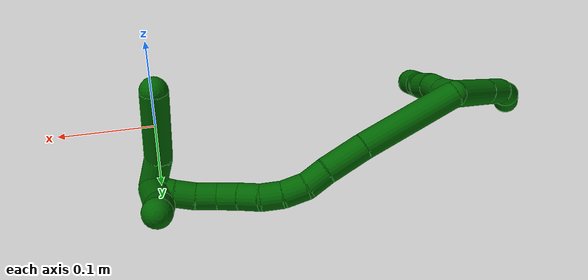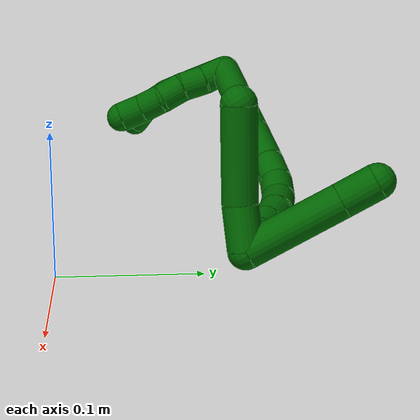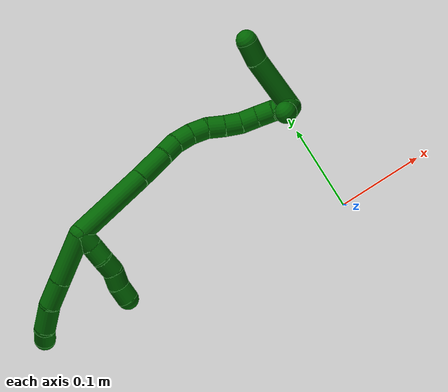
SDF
<sdf version="1.7">
 <world name="default">
  <model name="6">
   <static>0</static>
   <link name="6">
    <collision name="collision-cylinder-e_1_2_8">
     <pose>-0.025925 -0.000725 -0.017254 3.09957 -0.983168 -3.06313</pose>
     <geometry><cylinder><radius>0.0125</radius><length>0.062299</length></cylinder></geometry>
     <surface>
      <friction><ode><mu>1.16</mu><mu2>1.16</mu2><slip1>0</slip1><slip2>0</slip2></ode></friction>
      <contact><ode><kp>1e+06</kp><kd>1</kd><max_vel>0</max_vel><min_depth>0.001</min_depth></ode></contact>
     </surface>
    </collision>
    <visual name="visual-cylinder-e_1_2_8">
     <pose>-0.025925 -0.000725 -0.017254 3.09957 -0.983168 -3.06313</pose>
     <geometry><cylinder><radius>0.0125</radius><length>0.062299</length></cylinder></geometry>
     <material><ambient>0 0.392157 0.003922 1</ambient></material>
    </visual>
    <collision name="collision-cylinder-e_2_8_9">
     <pose>-0.065769 -0.001766 -0.043876 3.10798 -0.978122 -3.07844</pose>
     <geometry><cylinder><radius>0.0125</radius><length>0.033564</length></cylinder></geometry>
     <surface>
      <friction><ode><mu>1.16</mu><mu2>1.16</mu2><slip1>0</slip1><slip2>0</slip2></ode></friction>
      <contact><ode><kp>1e+06</kp><kd>1</kd><max_vel>0</max_vel><min_depth>0.001</min_depth></ode></contact>
     </surface>
    </collision>
    <visual name="visual-cylinder-e_2_8_9">
     <pose>-0.065769 -0.001766 -0.043876 3.10798 -0.978122 -3.07844</pose>
     <geometry><cylinder><radius>0.0125</radius><length>0.033564</length></cylinder></geometry>
     <material><ambient>0 0.392157 0.003922 1</ambient></material>
    </visual>
    <collision name="collision-cylinder-e_3_9_10">
     <pose>-0.091277 -0.000517 -0.065122 -3.01067 -0.76879 2.82026</pose>
     <geometry><cylinder><radius>0.0125</radius><length>0.033333</length></cylinder></geometry>
     <surface>
      <friction><ode><mu>1.16</mu><mu2>1.16</mu2><slip1>0</slip1><slip2>0</slip2></ode></friction>
      <contact><ode><kp>1e+06</kp><kd>1</kd><max_vel>0</max_vel><min_depth>0.001</min_depth></ode></contact>
     </surface>
    </collision>
    <visual name="visual-cylinder-e_3_9_10">
     <pose>-0.091277 -0.000517 -0.065122 -3.01067 -0.76879 2.82026</pose>
     <geometry><cylinder><radius>0.0125</radius><length>0.033333</length></cylinder></geometry>
     <material><ambient>0 0.392157 0.003922 1</ambient></material>
    </visual>
    <collision name="collision-cylinder-e_4_10_6">
     <pose>-0.108009 0.004677 -0.085278 -2.72831 -0.517425 1.80174</pose>
     <geometry><cylinder><radius>0.0125</radius><length>0.020803</length></cylinder></geometry>
     <surface>
      <friction><ode><mu>1.16</mu><mu2>1.16</mu2><slip1>0</slip1><slip2>0</slip2></ode></friction>
      <contact><ode><kp>1e+06</kp><kd>1</kd><max_vel>0</max_vel><min_depth>0.001</min_depth></ode></contact>
     </surface>
    </collision>
    <visual name="visual-cylinder-e_4_10_6">
     <pose>-0.108009 0.004677 -0.085278 -2.72831 -0.517425 1.80174</pose>
     <geometry><cylinder><radius>0.0125</radius><length>0.020803</length></cylinder></geometry>
     <material><ambient>0 0.392157 0.003922 1</ambient></material>
    </visual>
    <collision name="collision-cylinder-e_1_2_11">
     <pose>0.000939 -0.001327 -0.009867 3.0079 0.094032 1.22524</pose>
     <geometry><cylinder><radius>0.0125</radius><length>0.02</length></cylinder></geometry>
     <surface>
      <friction><ode><mu>1.16</mu><mu2>1.16</mu2><slip1>0</slip1><slip2>0</slip2></ode></friction>
      <contact><ode><kp>1e+06</kp><kd>1</kd><max_vel>0</max_vel><min_depth>0.001</min_depth></ode></contact>
     </surface>
    </collision>
    <visual name="visual-cylinder-e_1_2_11">
     <pose>0.000939 -0.001327 -0.009867 3.0079 0.094032 1.22524</pose>
     <geometry><cylinder><radius>0.0125</radius><length>0.02</length></cylinder></geometry>
     <material><ambient>0 0.392157 0.003922 1</ambient></material>
    </visual>
    <collision name="collision-cylinder-e_2_11_12">
     <pose>0.00223 -0.005217 -0.029394 2.88226 0.035207 0.268407</pose>
     <geometry><cylinder><radius>0.0125</radius><length>0.02</length></cylinder></geometry>
     <surface>
      <friction><ode><mu>1.16</mu><mu2>1.16</mu2><slip1>0</slip1><slip2>0</slip2></ode></friction>
      <contact><ode><kp>1e+06</kp><kd>1</kd><max_vel>0</max_vel><min_depth>0.001</min_depth></ode></contact>
     </surface>
    </collision>
    <visual name="visual-cylinder-e_2_11_12">
     <pose>0.00223 -0.005217 -0.029394 2.88226 0.035207 0.268407</pose>
     <geometry><cylinder><radius>0.0125</radius><length>0.02</length></cylinder></geometry>
     <material><ambient>0 0.392157 0.003922 1</ambient></material>
    </visual>
    <collision name="collision-cylinder-e_3_12_13">
     <pose>0.002826 -0.008254 -0.049039 3.09417 0.024434 0.951402</pose>
     <geometry><cylinder><radius>0.0125</radius><length>0.02</length></cylinder></geometry>
     <surface>
      <friction><ode><mu>1.16</mu><mu2>1.16</mu2><slip1>0</slip1><slip2>0</slip2></ode></friction>
      <contact><ode><kp>1e+06</kp><kd>1</kd><max_vel>0</max_vel><min_depth>0.001</min_depth></ode></contact>
     </surface>
    </collision>
    <visual name="visual-cylinder-e_3_12_13">
     <pose>0.002826 -0.008254 -0.049039 3.09417 0.024434 0.951402</pose>
     <geometry><cylinder><radius>0.0125</radius><length>0.02</length></cylinder></geometry>
     <material><ambient>0 0.392157 0.003922 1</ambient></material>
    </visual>
    <collision name="collision-cylinder-e_4_13_14">
     <pose>9.4e-05 -0.009483 -0.068542 3.06241 -0.302221 -2.63257</pose>
     <geometry><cylinder><radius>0.0125</radius><length>0.02</length></cylinder></geometry>
     <surface>
      <friction><ode><mu>1.16</mu><mu2>1.16</mu2><slip1>0</slip1><slip2>0</slip2></ode></friction>
      <contact><ode><kp>1e+06</kp><kd>1</kd><max_vel>0</max_vel><min_depth>0.001</min_depth></ode></contact>
     </surface>
    </collision>
    <visual name="visual-cylinder-e_4_13_14">
     <pose>9.4e-05 -0.009483 -0.068542 3.06241 -0.302221 -2.63257</pose>
     <geometry><cylinder><radius>0.0125</radius><length>0.02</length></cylinder></geometry>
     <material><ambient>0 0.392157 0.003922 1</ambient></material>
    </visual>
    <collision name="collision-cylinder-e_5_14_5">
     <pose>-0.003365 -0.011854 -0.087915 2.97912 -0.04833 -0.577157</pose>
     <geometry><cylinder><radius>0.0125</radius><length>0.02</length></cylinder></geometry>
     <surface>
      <friction><ode><mu>1.16</mu><mu2>1.16</mu2><slip1>0</slip1><slip2>0</slip2></ode></friction>
      <contact><ode><kp>1e+06</kp><kd>1</kd><max_vel>0</max_vel><min_depth>0.001</min_depth></ode></contact>
     </surface>
    </collision>
    <visual name="visual-cylinder-e_5_14_5">
     <pose>-0.003365 -0.011854 -0.087915 2.97912 -0.04833 -0.577157</pose>
     <geometry><cylinder><radius>0.0125</radius><length>0.02</length></cylinder></geometry>
     <material><ambient>0 0.392157 0.003922 1</ambient></material>
    </visual>
    <collision name="collision-cylinder-e_1_2_15">
     <pose>0.042133 0.022546 -0.005379 -1.80498 1.06785 -1.2855</pose>
     <geometry><cylinder><radius>0.0125</radius><length>0.096176</length></cylinder></geometry>
     <surface>
      <friction><ode><mu>1.16</mu><mu2>1.16</mu2><slip1>0</slip1><slip2>0</slip2></ode></friction>
      <contact><ode><kp>1e+06</kp><kd>1</kd><max_vel>0</max_vel><min_depth>0.001</min_depth></ode></contact>
     </surface>
    </collision>
    <visual name="visual-cylinder-e_1_2_15">
     <pose>0.042133 0.022546 -0.005379 -1.80498 1.06785 -1.2855</pose>
     <geometry><cylinder><radius>0.0125</radius><length>0.096176</length></cylinder></geometry>
     <material><ambient>0 0.392157 0.003922 1</ambient></material>
    </visual>
    <collision name="collision-cylinder-e_2_15_16">
     <pose>0.10116 0.055377 -0.013063 -1.79138 1.013 -1.21196</pose>
     <geometry><cylinder><radius>0.0125</radius><length>0.039824</length></cylinder></geometry>
     <surface>
      <friction><ode><mu>1.16</mu><mu2>1.16</mu2><slip1>0</slip1><slip2>0</slip2></ode></friction>
      <contact><ode><kp>1e+06</kp><kd>1</kd><max_vel>0</max_vel><min_depth>0.001</min_depth></ode></contact>
     </surface>
    </collision>
    <visual name="visual-cylinder-e_2_15_16">
     <pose>0.10116 0.055377 -0.013063 -1.79138 1.013 -1.21196</pose>
     <geometry><cylinder><radius>0.0125</radius><length>0.039824</length></cylinder></geometry>
     <material><ambient>0 0.392157 0.003922 1</ambient></material>
    </visual>
    <collision name="collision-cylinder-e_3_16_17">
     <pose>0.126756 0.07214 -0.016991 -1.81598 0.916224 -1.12678</pose>
     <geometry><cylinder><radius>0.0125</radius><length>0.021939</length></cylinder></geometry>
     <surface>
      <friction><ode><mu>1.16</mu><mu2>1.16</mu2><slip1>0</slip1><slip2>0</slip2></ode></friction>
      <contact><ode><kp>1e+06</kp><kd>1</kd><max_vel>0</max_vel><min_depth>0.001</min_depth></ode></contact>
     </surface>
    </collision>
    <visual name="visual-cylinder-e_3_16_17">
     <pose>0.126756 0.07214 -0.016991 -1.81598 0.916224 -1.12678</pose>
     <geometry><cylinder><radius>0.0125</radius><length>0.021939</length></cylinder></geometry>
     <material><ambient>0 0.392157 0.003922 1</ambient></material>
    </visual>
    <collision name="collision-cylinder-e_4_17_18">
     <pose>0.145385 0.082261 -0.021504 -2.24196 1.13268 -1.84263</pose>
     <geometry><cylinder><radius>0.0125</radius><length>0.021924</length></cylinder></geometry>
     <surface>
      <friction><ode><mu>1.16</mu><mu2>1.16</mu2><slip1>0</slip1><slip2>0</slip2></ode></friction>
      <contact><ode><kp>1e+06</kp><kd>1</kd><max_vel>0</max_vel><min_depth>0.001</min_depth></ode></contact>
     </surface>
    </collision>
    <visual name="visual-cylinder-e_4_17_18">
     <pose>0.145385 0.082261 -0.021504 -2.24196 1.13268 -1.84263</pose>
     <geometry><cylinder><radius>0.0125</radius><length>0.021924</length></cylinder></geometry>
     <material><ambient>0 0.392157 0.003922 1</ambient></material>
    </visual>
    <collision name="collision-cylinder-e_5_18_19">
     <pose>0.164636 0.08714 -0.027815 -2.79422 1.19898 -2.63897</pose>
     <geometry><cylinder><radius>0.0125</radius><length>0.020017</length></cylinder></geometry>
     <surface>
      <friction><ode><mu>1.16</mu><mu2>1.16</mu2><slip1>0</slip1><slip2>0</slip2></ode></friction>
      <contact><ode><kp>1e+06</kp><kd>1</kd><max_vel>0</max_vel><min_depth>0.001</min_depth></ode></contact>
     </surface>
    </collision>
    <visual name="visual-cylinder-e_5_18_19">
     <pose>0.164636 0.08714 -0.027815 -2.79422 1.19898 -2.63897</pose>
     <geometry><cylinder><radius>0.0125</radius><length>0.020017</length></cylinder></geometry>
     <material><ambient>0 0.392157 0.003922 1</ambient></material>
    </visual>
    <collision name="collision-cylinder-e_6_19_20">
     <pose>0.182487 0.088118 -0.03655 3.09268 1.01275 3.05345</pose>
     <geometry><cylinder><radius>0.0125</radius><length>0.020102</length></cylinder></geometry>
     <surface>
      <friction><ode><mu>1.16</mu><mu2>1.16</mu2><slip1>0</slip1><slip2>0</slip2></ode></friction>
      <contact><ode><kp>1e+06</kp><kd>1</kd><max_vel>0</max_vel><min_depth>0.001</min_depth></ode></contact>
     </surface>
    </collision>
    <visual name="visual-cylinder-e_6_19_20">
     <pose>0.182487 0.088118 -0.03655 3.09268 1.01275 3.05345</pose>
     <geometry><cylinder><radius>0.0125</radius><length>0.020102</length></cylinder></geometry>
     <material><ambient>0 0.392157 0.003922 1</ambient></material>
    </visual>
    <collision name="collision-cylinder-e_7_20_21">
     <pose>0.199869 0.087822 -0.046524 3.13401 1.08655 3.12904</pose>
     <geometry><cylinder><radius>0.0125</radius><length>0.020013</length></cylinder></geometry>
     <surface>
      <friction><ode><mu>1.16</mu><mu2>1.16</mu2><slip1>0</slip1><slip2>0</slip2></ode></friction>
      <contact><ode><kp>1e+06</kp><kd>1</kd><max_vel>0</max_vel><min_depth>0.001</min_depth></ode></contact>
     </surface>
    </collision>
    <visual name="visual-cylinder-e_7_20_21">
     <pose>0.199869 0.087822 -0.046524 3.13401 1.08655 3.12904</pose>
     <geometry><cylinder><radius>0.0125</radius><length>0.020013</length></cylinder></geometry>
     <material><ambient>0 0.392157 0.003922 1</ambient></material>
    </visual>
    <collision name="collision-cylinder-e_8_21_22">
     <pose>0.21841 0.0876 -0.053669 3.06655 1.31877 3.04481</pose>
     <geometry><cylinder><radius>0.0125</radius><length>0.020001</length></cylinder></geometry>
     <surface>
      <friction><ode><mu>1.16</mu><mu2>1.16</mu2><slip1>0</slip1><slip2>0</slip2></ode></friction>
      <contact><ode><kp>1e+06</kp><kd>1</kd><max_vel>0</max_vel><min_depth>0.001</min_depth></ode></contact>
     </surface>
    </collision>
    <visual name="visual-cylinder-e_8_21_22">
     <pose>0.21841 0.0876 -0.053669 3.06655 1.31877 3.04481</pose>
     <geometry><cylinder><radius>0.0125</radius><length>0.020001</length></cylinder></geometry>
     <material><ambient>0 0.392157 0.003922 1</ambient></material>
    </visual>
    <collision name="collision-cylinder-e_9_22_23">
     <pose>0.237788 0.08584 -0.058046 2.4475 1.32229 2.2712</pose>
     <geometry><cylinder><radius>0.0125</radius><length>0.020001</length></cylinder></geometry>
     <surface>
      <friction><ode><mu>1.16</mu><mu2>1.16</mu2><slip1>0</slip1><slip2>0</slip2></ode></friction>
      <contact><ode><kp>1e+06</kp><kd>1</kd><max_vel>0</max_vel><min_depth>0.001</min_depth></ode></contact>
     </surface>
    </collision>
    <visual name="visual-cylinder-e_9_22_23">
     <pose>0.237788 0.08584 -0.058046 2.4475 1.32229 2.2712</pose>
     <geometry><cylinder><radius>0.0125</radius><length>0.020001</length></cylinder></geometry>
     <material><ambient>0 0.392157 0.003922 1</ambient></material>
    </visual>
    <collision name="collision-cylinder-e_10_23_1">
     <pose>0.25676 0.081883 -0.06281 2.44914 1.18835 2.16068</pose>
     <geometry><cylinder><radius>0.0125</radius><length>0.020003</length></cylinder></geometry>
     <surface>
      <friction><ode><mu>1.16</mu><mu2>1.16</mu2><slip1>0</slip1><slip2>0</slip2></ode></friction>
      <contact><ode><kp>1e+06</kp><kd>1</kd><max_vel>0</max_vel><min_depth>0.001</min_depth></ode></contact>
     </surface>
    </collision>
    <visual name="visual-cylinder-e_10_23_1">
     <pose>0.25676 0.081883 -0.06281 2.44914 1.18835 2.16068</pose>
     <geometry><cylinder><radius>0.0125</radius><length>0.020003</length></cylinder></geometry>
     <material><ambient>0 0.392157 0.003922 1</ambient></material>
    </visual>
    <collision name="collision-cylinder-e_1_1_24">
     <pose>0.263551 0.065349 -0.058823 1.11947 -0.156872 -0.098416</pose>
     <geometry><cylinder><radius>0.0125</radius><length>0.031844</length></cylinder></geometry>
     <surface>
      <friction><ode><mu>1.16</mu><mu2>1.16</mu2><slip1>0</slip1><slip2>0</slip2></ode></friction>
      <contact><ode><kp>1e+06</kp><kd>1</kd><max_vel>0</max_vel><min_depth>0.001</min_depth></ode></contact>
     </surface>
    </collision>
    <visual name="visual-cylinder-e_1_1_24">
     <pose>0.263551 0.065349 -0.058823 1.11947 -0.156872 -0.098416</pose>
     <geometry><cylinder><radius>0.0125</radius><length>0.031844</length></cylinder></geometry>
     <material><ambient>0 0.392157 0.003922 1</ambient></material>
    </visual>
    <collision name="collision-cylinder-e_2_24_4">
     <pose>0.263892 0.021989 -0.034638 1.03541 0.083096 0.047343</pose>
     <geometry><cylinder><radius>0.0125</radius><length>0.068156</length></cylinder></geometry>
     <surface>
      <friction><ode><mu>1.16</mu><mu2>1.16</mu2><slip1>0</slip1><slip2>0</slip2></ode></friction>
      <contact><ode><kp>1e+06</kp><kd>1</kd><max_vel>0</max_vel><min_depth>0.001</min_depth></ode></contact>
     </surface>
    </collision>
    <visual name="visual-cylinder-e_2_24_4">
     <pose>0.263892 0.021989 -0.034638 1.03541 0.083096 0.047343</pose>
     <geometry><cylinder><radius>0.0125</radius><length>0.068156</length></cylinder></geometry>
     <material><ambient>0 0.392157 0.003922 1</ambient></material>
    </visual>
    <collision name="collision-cylinder-e_1_1_25">
     <pose>0.266458 0.08236 -0.029607 -0.079095 0.011577 -0.000458</pose>
     <geometry><cylinder><radius>0.0125</radius><length>0.072382</length></cylinder></geometry>
     <surface>
      <friction><ode><mu>1.16</mu><mu2>1.16</mu2><slip1>0</slip1><slip2>0</slip2></ode></friction>
      <contact><ode><kp>1e+06</kp><kd>1</kd><max_vel>0</max_vel><min_depth>0.001</min_depth></ode></contact>
     </surface>
    </collision>
    <visual name="visual-cylinder-e_1_1_25">
     <pose>0.266458 0.08236 -0.029607 -0.079095 0.011577 -0.000458</pose>
     <geometry><cylinder><radius>0.0125</radius><length>0.072382</length></cylinder></geometry>
     <material><ambient>0 0.392157 0.003922 1</ambient></material>
    </visual>
    <collision name="collision-cylinder-e_2_25_3">
     <pose>0.269122 0.085657 0.020087 -0.032149 0.163328 -0.002631</pose>
     <geometry><cylinder><radius>0.0125</radius><length>0.027618</length></cylinder></geometry>
     <surface>
      <friction><ode><mu>1.16</mu><mu2>1.16</mu2><slip1>0</slip1><slip2>0</slip2></ode></friction>
      <contact><ode><kp>1e+06</kp><kd>1</kd><max_vel>0</max_vel><min_depth>0.001</min_depth></ode></contact>
     </surface>
    </collision>
    <visual name="visual-cylinder-e_2_25_3">
     <pose>0.269122 0.085657 0.020087 -0.032149 0.163328 -0.002631</pose>
     <geometry><cylinder><radius>0.0125</radius><length>0.027618</length></cylinder></geometry>
     <material><ambient>0 0.392157 0.003922 1</ambient></material>
    </visual>
    <collision name="collision-sphere-3">
     <pose>0.271367 0.086095 0.033705 0 -0 0</pose>
     <geometry><sphere><radius>0.0125</radius></sphere></geometry>
     <surface>
      <friction><ode><mu>1.16</mu><mu2>1.16</mu2><slip1>0</slip1><slip2>0</slip2></ode></friction>
      <contact><ode><kp>1e+06</kp><kd>1</kd><max_vel>0</max_vel><min_depth>0.001</min_depth></ode></contact>
     </surface>
    </collision>
    <visual name="visual-sphere-3">
     <pose>0.271367 0.086095 0.033705 0 -0 0</pose>
     <geometry><sphere><radius>0.0125</radius></sphere></geometry>
     <material><ambient>0 0.392157 0.003922 1</ambient></material>
    </visual>
    <collision name="collision-sphere-25">
     <pose>0.266877 0.085219 0.006468 0 -0 0</pose>
     <geometry><sphere><radius>0.0125</radius></sphere></geometry>
     <surface>
      <friction><ode><mu>1.16</mu><mu2>1.16</mu2><slip1>0</slip1><slip2>0</slip2></ode></friction>
      <contact><ode><kp>1e+06</kp><kd>1</kd><max_vel>0</max_vel><min_depth>0.001</min_depth></ode></contact>
     </surface>
    </collision>
    <visual name="visual-sphere-25">
     <pose>0.266877 0.085219 0.006468 0 -0 0</pose>
     <geometry><sphere><radius>0.0125</radius></sphere></geometry>
     <material><ambient>0 0.392157 0.003922 1</ambient></material>
    </visual>
    <collision name="collision-sphere-4">
     <pose>0.266721 -0.00722 -0.017313 0 -0 0</pose>
     <geometry><sphere><radius>0.0125</radius></sphere></geometry>
     <surface>
      <friction><ode><mu>1.16</mu><mu2>1.16</mu2><slip1>0</slip1><slip2>0</slip2></ode></friction>
      <contact><ode><kp>1e+06</kp><kd>1</kd><max_vel>0</max_vel><min_depth>0.001</min_depth></ode></contact>
     </surface>
    </collision>
    <visual name="visual-sphere-4">
     <pose>0.266721 -0.00722 -0.017313 0 -0 0</pose>
     <geometry><sphere><radius>0.0125</radius></sphere></geometry>
     <material><ambient>0 0.392157 0.003922 1</ambient></material>
    </visual>
    <collision name="collision-sphere-24">
     <pose>0.261064 0.051197 -0.051964 0 -0 0</pose>
     <geometry><sphere><radius>0.0125</radius></sphere></geometry>
     <surface>
      <friction><ode><mu>1.16</mu><mu2>1.16</mu2><slip1>0</slip1><slip2>0</slip2></ode></friction>
      <contact><ode><kp>1e+06</kp><kd>1</kd><max_vel>0</max_vel><min_depth>0.001</min_depth></ode></contact>
     </surface>
    </collision>
    <visual name="visual-sphere-24">
     <pose>0.261064 0.051197 -0.051964 0 -0 0</pose>
     <geometry><sphere><radius>0.0125</radius></sphere></geometry>
     <material><ambient>0 0.392157 0.003922 1</ambient></material>
    </visual>
    <collision name="collision-sphere-1">
     <pose>0.266039 0.0795 -0.065683 0 -0 0</pose>
     <geometry><sphere><radius>0.0125</radius></sphere></geometry>
     <surface>
      <friction><ode><mu>1.16</mu><mu2>1.16</mu2><slip1>0</slip1><slip2>0</slip2></ode></friction>
      <contact><ode><kp>1e+06</kp><kd>1</kd><max_vel>0</max_vel><min_depth>0.001</min_depth></ode></contact>
     </surface>
    </collision>
    <visual name="visual-sphere-1">
     <pose>0.266039 0.0795 -0.065683 0 -0 0</pose>
     <geometry><sphere><radius>0.0125</radius></sphere></geometry>
     <material><ambient>0 0.392157 0.003922 1</ambient></material>
    </visual>
    <collision name="collision-sphere-23">
     <pose>0.247481 0.084266 -0.059937 0 -0 0</pose>
     <geometry><sphere><radius>0.0125</radius></sphere></geometry>
     <surface>
      <friction><ode><mu>1.16</mu><mu2>1.16</mu2><slip1>0</slip1><slip2>0</slip2></ode></friction>
      <contact><ode><kp>1e+06</kp><kd>1</kd><max_vel>0</max_vel><min_depth>0.001</min_depth></ode></contact>
     </surface>
    </collision>
    <visual name="visual-sphere-23">
     <pose>0.247481 0.084266 -0.059937 0 -0 0</pose>
     <geometry><sphere><radius>0.0125</radius></sphere></geometry>
     <material><ambient>0 0.392157 0.003922 1</ambient></material>
    </visual>
    <collision name="collision-sphere-22">
     <pose>0.228095 0.087413 -0.056156 0 -0 0</pose>
     <geometry><sphere><radius>0.0125</radius></sphere></geometry>
     <surface>
      <friction><ode><mu>1.16</mu><mu2>1.16</mu2><slip1>0</slip1><slip2>0</slip2></ode></friction>
      <contact><ode><kp>1e+06</kp><kd>1</kd><max_vel>0</max_vel><min_depth>0.001</min_depth></ode></contact>
     </surface>
    </collision>
    <visual name="visual-sphere-22">
     <pose>0.228095 0.087413 -0.056156 0 -0 0</pose>
     <geometry><sphere><radius>0.0125</radius></sphere></geometry>
     <material><ambient>0 0.392157 0.003922 1</ambient></material>
    </visual>
    <collision name="collision-sphere-21">
     <pose>0.208725 0.087787 -0.051182 0 -0 0</pose>
     <geometry><sphere><radius>0.0125</radius></sphere></geometry>
     <surface>
      <friction><ode><mu>1.16</mu><mu2>1.16</mu2><slip1>0</slip1><slip2>0</slip2></ode></friction>
      <contact><ode><kp>1e+06</kp><kd>1</kd><max_vel>0</max_vel><min_depth>0.001</min_depth></ode></contact>
     </surface>
    </collision>
    <visual name="visual-sphere-21">
     <pose>0.208725 0.087787 -0.051182 0 -0 0</pose>
     <geometry><sphere><radius>0.0125</radius></sphere></geometry>
     <material><ambient>0 0.392157 0.003922 1</ambient></material>
    </visual>
    <collision name="collision-sphere-11">
     <pose>0.001878 -0.002654 -0.019734 0 -0 0</pose>
     <geometry><sphere><radius>0.0125</radius></sphere></geometry>
     <surface>
      <friction><ode><mu>1.16</mu><mu2>1.16</mu2><slip1>0</slip1><slip2>0</slip2></ode></friction>
      <contact><ode><kp>1e+06</kp><kd>1</kd><max_vel>0</max_vel><min_depth>0.001</min_depth></ode></contact>
     </surface>
    </collision>
    <visual name="visual-sphere-11">
     <pose>0.001878 -0.002654 -0.019734 0 -0 0</pose>
     <geometry><sphere><radius>0.0125</radius></sphere></geometry>
     <material><ambient>0 0.392157 0.003922 1</ambient></material>
    </visual>
    <collision name="collision-sphere-6">
     <pose>-0.113155 0.008308 -0.093556 0 -0 0</pose>
     <geometry><sphere><radius>0.0125</radius></sphere></geometry>
     <surface>
      <friction><ode><mu>1.16</mu><mu2>1.16</mu2><slip1>0</slip1><slip2>0</slip2></ode></friction>
      <contact><ode><kp>1e+06</kp><kd>1</kd><max_vel>0</max_vel><min_depth>0.001</min_depth></ode></contact>
     </surface>
    </collision>
    <visual name="visual-sphere-6">
     <pose>-0.113155 0.008308 -0.093556 0 -0 0</pose>
     <geometry><sphere><radius>0.0125</radius></sphere></geometry>
     <material><ambient>0 0.392157 0.003922 1</ambient></material>
    </visual>
    <collision name="collision-sphere-10">
     <pose>-0.102864 0.001047 -0.076999 0 -0 0</pose>
     <geometry><sphere><radius>0.0125</radius></sphere></geometry>
     <surface>
      <friction><ode><mu>1.16</mu><mu2>1.16</mu2><slip1>0</slip1><slip2>0</slip2></ode></friction>
      <contact><ode><kp>1e+06</kp><kd>1</kd><max_vel>0</max_vel><min_depth>0.001</min_depth></ode></contact>
     </surface>
    </collision>
    <visual name="visual-sphere-10">
     <pose>-0.102864 0.001047 -0.076999 0 -0 0</pose>
     <geometry><sphere><radius>0.0125</radius></sphere></geometry>
     <material><ambient>0 0.392157 0.003922 1</ambient></material>
    </visual>
    <collision name="collision-sphere-9">
     <pose>-0.079689 -0.002081 -0.053245 0 -0 0</pose>
     <geometry><sphere><radius>0.0125</radius></sphere></geometry>
     <surface>
      <friction><ode><mu>1.16</mu><mu2>1.16</mu2><slip1>0</slip1><slip2>0</slip2></ode></friction>
      <contact><ode><kp>1e+06</kp><kd>1</kd><max_vel>0</max_vel><min_depth>0.001</min_depth></ode></contact>
     </surface>
    </collision>
    <visual name="visual-sphere-9">
     <pose>-0.079689 -0.002081 -0.053245 0 -0 0</pose>
     <geometry><sphere><radius>0.0125</radius></sphere></geometry>
     <material><ambient>0 0.392157 0.003922 1</ambient></material>
    </visual>
    <collision name="collision-sphere-2">
     <geometry><sphere><radius>0.0125</radius></sphere></geometry>
     <surface>
      <friction><ode><mu>1.16</mu><mu2>1.16</mu2><slip1>0</slip1><slip2>0</slip2></ode></friction>
      <contact><ode><kp>1e+06</kp><kd>1</kd><max_vel>0</max_vel><min_depth>0.001</min_depth></ode></contact>
     </surface>
    </collision>
    <visual name="visual-sphere-2">
     <geometry><sphere><radius>0.0125</radius></sphere></geometry>
     <material><ambient>0 0.392157 0.003922 1</ambient></material>
    </visual>
    <collision name="collision-sphere-19">
     <pose>0.173961 0.088378 -0.031234 0 -0 0</pose>
     <geometry><sphere><radius>0.0125</radius></sphere></geometry>
     <surface>
      <friction><ode><mu>1.16</mu><mu2>1.16</mu2><slip1>0</slip1><slip2>0</slip2></ode></friction>
      <contact><ode><kp>1e+06</kp><kd>1</kd><max_vel>0</max_vel><min_depth>0.001</min_depth></ode></contact>
     </surface>
    </collision>
    <visual name="visual-sphere-19">
     <pose>0.173961 0.088378 -0.031234 0 -0 0</pose>
     <geometry><sphere><radius>0.0125</radius></sphere></geometry>
     <material><ambient>0 0.392157 0.003922 1</ambient></material>
    </visual>
    <collision name="collision-sphere-8">
     <pose>-0.051849 -0.001451 -0.034508 0 -0 0</pose>
     <geometry><sphere><radius>0.0125</radius></sphere></geometry>
     <surface>
      <friction><ode><mu>1.16</mu><mu2>1.16</mu2><slip1>0</slip1><slip2>0</slip2></ode></friction>
      <contact><ode><kp>1e+06</kp><kd>1</kd><max_vel>0</max_vel><min_depth>0.001</min_depth></ode></contact>
     </surface>
    </collision>
    <visual name="visual-sphere-8">
     <pose>-0.051849 -0.001451 -0.034508 0 -0 0</pose>
     <geometry><sphere><radius>0.0125</radius></sphere></geometry>
     <material><ambient>0 0.392157 0.003922 1</ambient></material>
    </visual>
    <collision name="collision-sphere-12">
     <pose>0.002582 -0.00778 -0.039053 0 -0 0</pose>
     <geometry><sphere><radius>0.0125</radius></sphere></geometry>
     <surface>
      <friction><ode><mu>1.16</mu><mu2>1.16</mu2><slip1>0</slip1><slip2>0</slip2></ode></friction>
      <contact><ode><kp>1e+06</kp><kd>1</kd><max_vel>0</max_vel><min_depth>0.001</min_depth></ode></contact>
     </surface>
    </collision>
    <visual name="visual-sphere-12">
     <pose>0.002582 -0.00778 -0.039053 0 -0 0</pose>
     <geometry><sphere><radius>0.0125</radius></sphere></geometry>
     <material><ambient>0 0.392157 0.003922 1</ambient></material>
    </visual>
    <collision name="collision-sphere-13">
     <pose>0.003071 -0.008727 -0.059025 0 -0 0</pose>
     <geometry><sphere><radius>0.0125</radius></sphere></geometry>
     <surface>
      <friction><ode><mu>1.16</mu><mu2>1.16</mu2><slip1>0</slip1><slip2>0</slip2></ode></friction>
      <contact><ode><kp>1e+06</kp><kd>1</kd><max_vel>0</max_vel><min_depth>0.001</min_depth></ode></contact>
     </surface>
    </collision>
    <visual name="visual-sphere-13">
     <pose>0.003071 -0.008727 -0.059025 0 -0 0</pose>
     <geometry><sphere><radius>0.0125</radius></sphere></geometry>
     <material><ambient>0 0.392157 0.003922 1</ambient></material>
    </visual>
    <collision name="collision-sphere-14">
     <pose>-0.002882 -0.010238 -0.078058 0 -0 0</pose>
     <geometry><sphere><radius>0.0125</radius></sphere></geometry>
     <surface>
      <friction><ode><mu>1.16</mu><mu2>1.16</mu2><slip1>0</slip1><slip2>0</slip2></ode></friction>
      <contact><ode><kp>1e+06</kp><kd>1</kd><max_vel>0</max_vel><min_depth>0.001</min_depth></ode></contact>
     </surface>
    </collision>
    <visual name="visual-sphere-14">
     <pose>-0.002882 -0.010238 -0.078058 0 -0 0</pose>
     <geometry><sphere><radius>0.0125</radius></sphere></geometry>
     <material><ambient>0 0.392157 0.003922 1</ambient></material>
    </visual>
    <collision name="collision-sphere-5">
     <pose>-0.003849 -0.013469 -0.097772 0 -0 0</pose>
     <geometry><sphere><radius>0.0125</radius></sphere></geometry>
     <surface>
      <friction><ode><mu>1.16</mu><mu2>1.16</mu2><slip1>0</slip1><slip2>0</slip2></ode></friction>
      <contact><ode><kp>1e+06</kp><kd>1</kd><max_vel>0</max_vel><min_depth>0.001</min_depth></ode></contact>
     </surface>
    </collision>
    <visual name="visual-sphere-5">
     <pose>-0.003849 -0.013469 -0.097772 0 -0 0</pose>
     <geometry><sphere><radius>0.0125</radius></sphere></geometry>
     <material><ambient>0 0.392157 0.003922 1</ambient></material>
    </visual>
    <collision name="collision-sphere-15">
     <pose>0.084266 0.045093 -0.010757 0 -0 0</pose>
     <geometry><sphere><radius>0.0125</radius></sphere></geometry>
     <surface>
      <friction><ode><mu>1.16</mu><mu2>1.16</mu2><slip1>0</slip1><slip2>0</slip2></ode></friction>
      <contact><ode><kp>1e+06</kp><kd>1</kd><max_vel>0</max_vel><min_depth>0.001</min_depth></ode></contact>
     </surface>
    </collision>
    <visual name="visual-sphere-15">
     <pose>0.084266 0.045093 -0.010757 0 -0 0</pose>
     <geometry><sphere><radius>0.0125</radius></sphere></geometry>
     <material><ambient>0 0.392157 0.003922 1</ambient></material>
    </visual>
    <collision name="collision-sphere-16">
     <pose>0.118054 0.065661 -0.015369 0 -0 0</pose>
     <geometry><sphere><radius>0.0125</radius></sphere></geometry>
     <surface>
      <friction><ode><mu>1.16</mu><mu2>1.16</mu2><slip1>0</slip1><slip2>0</slip2></ode></friction>
      <contact><ode><kp>1e+06</kp><kd>1</kd><max_vel>0</max_vel><min_depth>0.001</min_depth></ode></contact>
     </surface>
    </collision>
    <visual name="visual-sphere-16">
     <pose>0.118054 0.065661 -0.015369 0 -0 0</pose>
     <geometry><sphere><radius>0.0125</radius></sphere></geometry>
     <material><ambient>0 0.392157 0.003922 1</ambient></material>
    </visual>
    <collision name="collision-sphere-17">
     <pose>0.135458 0.078619 -0.018612 0 -0 0</pose>
     <geometry><sphere><radius>0.0125</radius></sphere></geometry>
     <surface>
      <friction><ode><mu>1.16</mu><mu2>1.16</mu2><slip1>0</slip1><slip2>0</slip2></ode></friction>
      <contact><ode><kp>1e+06</kp><kd>1</kd><max_vel>0</max_vel><min_depth>0.001</min_depth></ode></contact>
     </surface>
    </collision>
    <visual name="visual-sphere-17">
     <pose>0.135458 0.078619 -0.018612 0 -0 0</pose>
     <geometry><sphere><radius>0.0125</radius></sphere></geometry>
     <material><ambient>0 0.392157 0.003922 1</ambient></material>
    </visual>
    <collision name="collision-sphere-18">
     <pose>0.155312 0.085902 -0.024396 0 -0 0</pose>
     <geometry><sphere><radius>0.0125</radius></sphere></geometry>
     <surface>
      <friction><ode><mu>1.16</mu><mu2>1.16</mu2><slip1>0</slip1><slip2>0</slip2></ode></friction>
      <contact><ode><kp>1e+06</kp><kd>1</kd><max_vel>0</max_vel><min_depth>0.001</min_depth></ode></contact>
     </surface>
    </collision>
    <visual name="visual-sphere-18">
     <pose>0.155312 0.085902 -0.024396 0 -0 0</pose>
     <geometry><sphere><radius>0.0125</radius></sphere></geometry>
     <material><ambient>0 0.392157 0.003922 1</ambient></material>
    </visual>
    <collision name="collision-sphere-20">
     <pose>0.191013 0.087858 -0.041866 0 -0 0</pose>
     <geometry><sphere><radius>0.0125</radius></sphere></geometry>
     <surface>
      <friction><ode><mu>1.16</mu><mu2>1.16</mu2><slip1>0</slip1><slip2>0</slip2></ode></friction>
      <contact><ode><kp>1e+06</kp><kd>1</kd><max_vel>0</max_vel><min_depth>0.001</min_depth></ode></contact>
     </surface>
    </collision>
    <visual name="visual-sphere-20">
     <pose>0.191013 0.087858 -0.041866 0 -0 0</pose>
     <geometry><sphere><radius>0.0125</radius></sphere></geometry>
     <material><ambient>0 0.392157 0.003922 1</ambient></material>
    </visual>
    <inertial>
     <pose>0.111085 0.039066 -0.033073 0 -0 0</pose>
     <mass>0.75</mass>
     <inertia><ixx>3.9e-05</ixx><ixy>0</ixy><ixz>0</ixz><iyy>0.00012</iyy><iyz>0</iyz><izz>-8.5e-05</izz></inertia>
    </inertial>
   </link>
   <pose>-0.268715 0.132488 0.086182 -1.02702 -0.125449 0.035527</pose>
  </model>
 </world>
</sdf>
